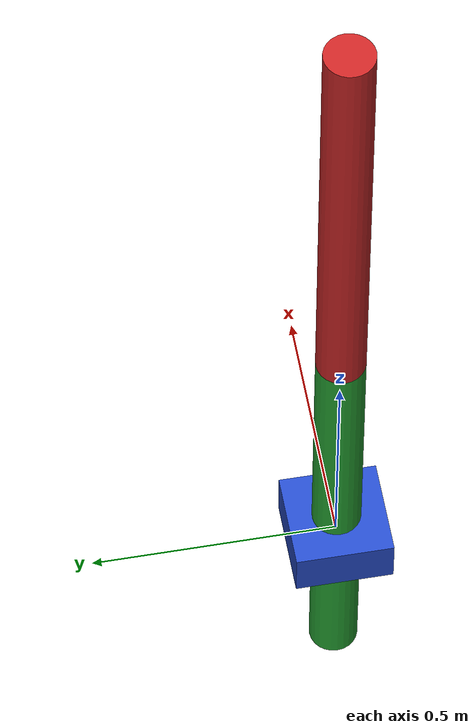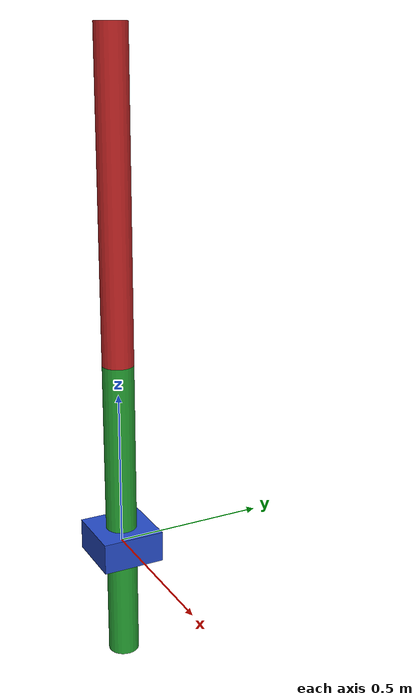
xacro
<?xml version="1.0"?>
<robot name="basic_robotic_arm" xmlns:xacro="http://www.ros.org/wiki/xacro">

  <!-- Include inertial macros -->
  <xacro:include filename="inertial_macros.xacro"/>

  <!-- Properties -->
  <xacro:property name="arm_length" value="1.0"/>
  <xacro:property name="arm_radius" value="0.05"/>
  <xacro:property name="base_height" value="0.1"/>
  <xacro:property name="base_mass" value="1.0"/>
  <xacro:property name="link_mass" value="0.5"/>

  <!-- Base Link -->
  <link name="base_link">
    <visual>
      <geometry>
        <box size="0.2 0.2 ${base_height}"/>
      </geometry>
      <material name="blue"/>
    </visual>
    <collision>
      <geometry>
        <box size="0.2 0.2 ${base_height}"/>
      </geometry>
    </collision>
    <xacro:inertial_box mass="${base_mass}" x="0.2" y="0.2" z="${base_height}">
      <origin xyz="0 0 ${base_height / 2}" rpy="0 0 0"/>
    </xacro:inertial_box>
  </link>

  <!-- Arm Link 1 -->
  <link name="link1">
    <visual>
      <geometry>
        <cylinder length="${arm_length}" radius="${arm_radius}"/>
      </geometry>
      <material name="green"/>
    </visual>
    <collision>
      <geometry>
        <cylinder length="${arm_length}" radius="${arm_radius}"/>
      </geometry>
    </collision>
    <xacro:inertial_cylinder mass="${link_mass}" length="${arm_length}" radius="${arm_radius}">
      <origin xyz="0 0 ${arm_length / 2}" rpy="0 0 0"/>
    </xacro:inertial_cylinder>
  </link>

  <!-- Joint 1 -->
  <joint name="joint1" type="revolute">
    <parent link="base_link"/>
    <child link="link1"/>
    <origin xyz="0 0 ${base_height}" rpy="0 0 0"/>
    <axis xyz="0 0 1"/>
    <limit lower="-1.57" upper="1.57" effort="10.0" velocity="1.0"/>
  </joint>

  <!-- Arm Link 2 -->
  <link name="link2">
    <visual>
      <geometry>
        <cylinder length="${arm_length}" radius="${arm_radius}"/>
      </geometry>
      <material name="red"/>
    </visual>
    <collision>
      <geometry>
        <cylinder length="${arm_length}" radius="${arm_radius}"/>
      </geometry>
    </collision>
    <xacro:inertial_cylinder mass="${link_mass}" length="${arm_length}" radius="${arm_radius}">
      <origin xyz="0 0 ${arm_length / 2}" rpy="0 0 0"/>
    </xacro:inertial_cylinder>
  </link>

  <!-- Joint 2 -->
  <joint name="joint2" type="revolute">
    <parent link="link1"/>
    <child link="link2"/>
    <origin xyz="0 0 ${arm_length}" rpy="0 0 0"/>
    <axis xyz="0 1 0"/>
    <limit lower="-1.57" upper="1.57" effort="10.0" velocity="1.0"/>
  </joint>

</robot>

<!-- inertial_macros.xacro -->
<robot xmlns:xacro="http://www.ros.org/wiki/xacro">

    <!-- Specify some standard inertial calculations https://en.wikipedia.org/wiki/List_of_moments_of_inertia -->
    <!-- These make use of xacro's mathematical functionality -->

    <xacro:macro name="inertial_sphere" params="mass radius *origin">
        <inertial>
            <xacro:insert_block name="origin"/>
            <mass value="${mass}" />
            <inertia ixx="${(2/5) * mass * (radius*radius)}" ixy="0.0" ixz="0.0"
                    iyy="${(2/5) * mass * (radius*radius)}" iyz="0.0"
                    izz="${(2/5) * mass * (radius*radius)}" />
        </inertial>
    </xacro:macro>

    <xacro:macro name="inertial_box" params="mass x y z *origin">
        <inertial>
            <xacro:insert_block name="origin"/>
            <mass value="${mass}" />
            <inertia ixx="${(1/12) * mass * (y*y + z*z)}" ixy="0.0" ixz="0.0"
                    iyy="${(1/12) * mass * (x*x + z*z)}" iyz="0.0"
                    izz="${(1/12) * mass * (x*x + y*y)}" />
        </inertial>
    </xacro:macro>

    <xacro:macro name="inertial_cylinder" params="mass length radius *origin">
        <inertial>
            <xacro:insert_block name="origin"/>
            <mass value="${mass}" />
            <inertia ixx="${(1/12) * mass * (3*radius*radius + length*length)}" ixy="0.0" ixz="0.0"
                    iyy="${(1/12) * mass * (3*radius*radius + length*length)}" iyz="0.0"
                    izz="${(1/2) * mass * (radius*radius)}" />
        </inertial>
    </xacro:macro>

</robot>
